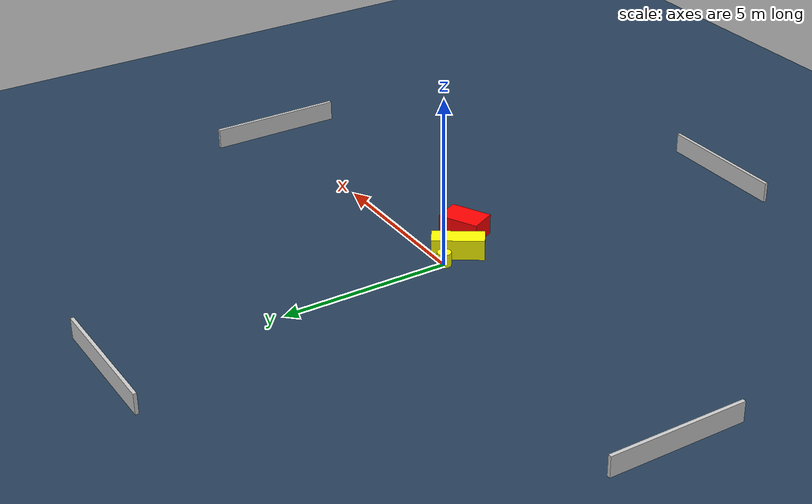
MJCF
<?xml version="1.0" ?>
<mujoco model="generated_environment">
  <option timestep="0.01" integrator="RK4" cone="elliptic"/>
  <default>
    <geom density="1"/>
  </default>
  <asset>
    <texture builtin="gradient" height="3072" name="skybox" rgb1="0.3 0.5 0.7" rgb2="0 0 0" type="skybox" width="512"/>
    <texture builtin="checker" height="300" name="groundplane" rgb1="0.2 0.3 0.4" rgb2="0.1 0.2 0.3" type="2d" width="300"/>
    <material name="groundplane" reflectance="0.2" texrepeat="5 5" texture="groundplane"/>
  </asset>
  <worldbody>
    <light dir="0 0 -1" directional="true" pos="0 0 1.5"/>
    <geom condim="3" friction="0.5 0.005 0.001" material="groundplane" name="floor" pos="0 0 0" size="0 0 0.05" type="plane"/>
    <body name="walls">
      <geom name="wall_1" condim="4" pos="-10.0 0.0 0.3" rgba="0.800000011920929 0.800000011920929 0.800000011920929 1.0" size="0.05 2.0 0.3" type="box"/>
      <geom name="wall_2" condim="4" pos="10.0 0.0 0.3" rgba="0.800000011920929 0.800000011920929 0.800000011920929 1.0" size="0.05 2.0 0.3" type="box"/>
      <geom name="wall_3" condim="4" pos="0.0 -10.0 0.3" rgba="0.800000011920929 0.800000011920929 0.800000011920929 1.0" size="2.0 0.05 0.3" type="box"/>
      <geom name="wall_4" condim="4" pos="0.0 10.0 0.3" rgba="0.800000011920929 0.800000011920929 0.800000011920929 1.0" size="2.0 0.05 0.3" type="box"/>
    </body>
    <body name="robot">
      <joint name="joint_x" type="slide" pos="0 0 0" axis="1 0 0"/>
      <joint name="joint_y" type="slide" pos="0 0 0" axis="0 1 0"/>
      <geom name="robot" type="cylinder" pos="0.0 0.0 0.2" size="0.2 0.2 0.0" mass="5.0" friction="1.0 0.005 0.0001" condim="4" rgba="1.0 1.0 0.0 1.0"/>
    </body>
    <body name="obstacle_1_movable">
      <geom name="obstacle_1_movable" condim="4" pos="0.2599336676990147 -0.6233442589730861 0.3" euler="0 0 55.558044751310916" friction="0.0 0.005 0.001" rgba="1.0 1.0 0.0 1.0" size="0.7508253117415242 0.2867309577644659 0.3" type="box" mass="0.1"/>
      <joint type="free"/>
    </body>
    <body name="obstacle_2_static">
      <geom name="obstacle_2_static" condim="4" pos="1.1768783577299247 -1.4420656536826015 0.3" euler="0 0 296.55567867420876" friction="0.0 0.005 0.001" rgba="1.0 0.0 0.0 1.0" size="0.40246454426003725 0.6152990859150136 0.3" type="box"/>
    </body>
  </worldbody>
  <actuator>
    <motor name="actuator_x" joint="joint_x" gear="1" ctrlrange="-1 1"/>
    <motor name="actuator_y" joint="joint_y" gear="1" ctrlrange="-1 1"/>
  </actuator>
</mujoco>
